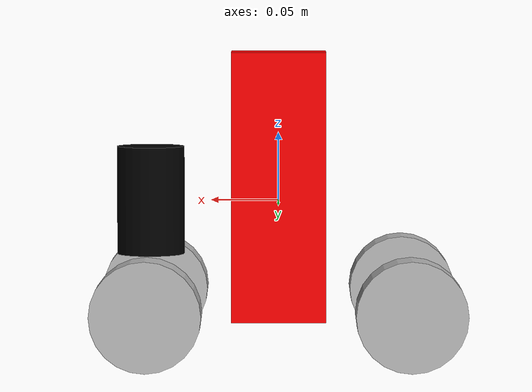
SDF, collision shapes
<?xml version="1.0" ?>
<sdf version="1.5">
  <model name="jsc_mobile_bot">
  <static>false</static>
  <pose>0.0 0.0 0.0 0.0 0.0 0.0</pose>
  <!-- ****************** ROBOT BASE FOOTPRINT ***************************  -->
  <link name="base_footprint"/>

  <!-- ********************** ROBOT BASE *********************************  -->
  <link name="base_link">
  <mass>2.5</mass>
    <collision name="base_collision">
      <pose>0 0 0.01 0 0 0</pose>
      <geometry>
        <box>
          <size>0.070 0.039 0.20</size>
        </box>
      </geometry>
<!-- PRUEBA-->
      <surface>
          <contact>
            <ode/>
          </contact>
          <friction>
            <ode>
              <mu>0.05</mu>
              <mu2>0.05</mu2>
            </ode>
          </friction>
        </surface>
  <!-- HASTA AQUI-->

    </collision>

    <visual name="base_visual">
      <pose>0 0 -0.05 1.5707963267949 0 3.141592654</pose>
      <geometry>
        <mesh>
          <uri>model://jsc_mobile_bot_description/meshes/robot_base.stl</uri>
          <scale>0.5 0.5 0.5</scale>
        </mesh>
      </geometry>
      <material>
        <ambient>1.0 0.0 0.0 1.0</ambient>
        <diffuse>1.0 0.0 0.0 1.0</diffuse>
        <specular>0.0 0.0 0.0 1.0</specular>
        <emissive>0.0 0.0 0.0 1.0</emissive>
      </material>
    </visual>
  </link>

  <!-- *********************** IMU SENSOR SETUP **************************  -->
  <link name="imu_link">
    <gravity>true</gravity>
    <sensor name="bmb_imu" type="imu">
      <always_on>true</always_on>
      <update_rate>100</update_rate>
      <visualize>true</visualize>
      <imu>
        <orientation>
          <x>
            <noise type="gaussian">
              <mean>0.0</mean>
              <stddev>2e-3</stddev>
            </noise>
          </x>
          <y>
            <noise type="gaussian">
              <mean>0.0</mean>
              <stddev>2e-3</stddev>
            </noise>
          </y>
          <z>
            <noise type="gaussian">
              <mean>0.0</mean>
              <stddev>2e-3</stddev>
            </noise>
          </z>
        </orientation>
        <angular_velocity>
          <x>
            <noise type="gaussian">
              <mean>0.0</mean>
              <stddev>2e-4</stddev>
            </noise>
          </x>
          <y>
            <noise type="gaussian">
              <mean>0.0</mean>
              <stddev>2e-4</stddev>
            </noise>
          </y>
          <z>
            <noise type="gaussian">
              <mean>0.0</mean>
              <stddev>2e-4</stddev>
            </noise>
          </z>
        </angular_velocity>
        <linear_acceleration>
          <x>
            <noise type="gaussian">
              <mean>0.0</mean>
              <stddev>1.7e-2</stddev>
            </noise>
          </x>
          <y>
            <noise type="gaussian">
              <mean>0.0</mean>
              <stddev>1.7e-2</stddev>
            </noise>
          </y>
          <z>
            <noise type="gaussian">
              <mean>0.0</mean>
              <stddev>1.7e-2</stddev>
            </noise>
          </z>
        </linear_acceleration>
      </imu>
      <plugin name="jsc_mobile_bot_imu" filename="libgazebo_ros_imu_sensor.so">
        <initial_orientation_as_reference>false</initial_orientation_as_reference>
        <frame_name>imu_link</frame_name>
        <ros>
          <namespace>/imu</namespace>
          <remapping>~/out:=data</remapping>
        </ros>
      </plugin>
    </sensor>
  </link>

  <!-- *********************** GPS SETUP *********************************  -->
  <link name="gps_link">
    <sensor name="bmb_gps" type="gps">
      <always_on>true</always_on>
      <update_rate>10.0</update_rate>
      <gps>
        <position_sensing>
          <horizontal>
            <noise type="gaussian">
              <mean>0.0</mean>
              <stddev>1e-2</stddev>
            </noise>
          </horizontal>
          <vertical>
            <noise type="gaussian">
              <mean>0.0</mean>
              <stddev>1</stddev>
            </noise>
          </vertical>
        </position_sensing>
      </gps>
      <plugin name="jsc_mobile_bot_gps" filename="libgazebo_ros_gps_sensor.so">
        <ros>
          <remapping>~/out:=gps/fix</remapping>
        </ros>
      </plugin>
    </sensor>
  </link>

    <!-- ****************************** LIDAR *****************************    -->

<link name="lidar_link">
  <!-- Physical properties-->
  <inertial>
  <pose>0.095 0 0.02 0 0 0</pose>
    <inertia>
      <ixx>0.001</ixx>
      <ixy>0.000</ixy>
      <ixz>0.000</ixz>
      <iyy>0.001</iyy>
      <iyz>0.000</iyz>
      <izz>0.001</izz>
    </inertia>
    <!--Weight of the LIDAR -->
    <mass>0.114</mass>
  </inertial>

  <collision name="lidar_collision">
  <pose>0.095 0 0 0 0 0</pose>
    <geometry>
      <cylinder>
        <radius>0.025</radius>
        <length>0.08</length>
      </cylinder>
    </geometry>scan
  </collision>

  <visual name="lidar_visual">
  <pose>0.095 0 0.08 0 0 0</pose>
    <geometry>
      <cylinder>
        <radius>0.0508</radius>
        <length>0.12</length>
      </cylinder>
    </geometry>
    <material>
      <ambient>0 0 0 1</ambient>  <!-- Color negro -->
      <diffuse>0 0 0 1</diffuse>  <!-- Color negro -->
    </material>
  </visual>

  <sensor name="lidar" type="ray">
  <pose>0.095 0 0.13 0 0 0</pose>
    <always_on>true</always_on>
    <visualize>true</visualize>
    <update_rate>300</update_rate>
    <ray>
      <scan>
        <horizontal>
          <samples>360</samples>
          <resolution>1.00000</resolution>
          <min_angle>0.000000</min_angle>
          <max_angle>6.280000</max_angle>
        </horizontal>
      </scan>
      <range>
        <min>0.060000</min>
        <max>30</max>
        <resolution>0.015000</resolution>
      </range>
      <noise>
        <type>gaussian</type>
        <mean>0.0</mean>
        <stddev>0.01</stddev>
      </noise>
    </ray>
    <plugin name="scan" filename="libgazebo_ros_ray_sensor.so">
      <ros>
        <remapping>~/out:=scan</remapping>
      </ros>
      <output_type>sensor_msgs/LaserScan</output_type>
      <frame_name>lidar_link</frame_name>
    </plugin>
  </sensor>
</link>

  <!-- *********************** DRIVE WHEELS ******************************  -->

    <link name="drivewhl_fl_link">
      <pose>0.095 0.095 -0.075 1.570796 0 0</pose>
      <collision name="drivewhl_fl_collision">
        <geometry>
          <cylinder>
            <radius>0.04</radius>
            <length>0.035</length>
          </cylinder>
        </geometry>
      </collision>
      <visual name="drivewhl_fl_visual">
        <geometry>
          <cylinder>
            <radius>0.04</radius>
            <length>0.035</length>
          </cylinder>
        </geometry>
      </visual>
    </link>

    <link name="drivewhl_fr_link">
      <pose>0.095 -0.095 -0.075 1.570796 0 0</pose>
      <collision name="drivewhl_fr_collision">
        <geometry>
          <cylinder>
            <radius>0.04</radius>
            <length>0.035</length>
          </cylinder>
        </geometry>
      </collision>
      <visual name="drivewhl_fr_visual">
        <geometry>
          <cylinder>
            <radius>0.04</radius>
            <length>0.035</length>
          </cylinder>
        </geometry>
      </visual>
    </link>

    <link name="drivewhl_bl_link">
      <pose>-0.095 0.095 -0.075 1.570796 0 0</pose>
      <collision name="drivewhl_bl_collision">
        <geometry>
          <cylinder>
            <radius>0.04</radius>
            <length>0.035</length>
          </cylinder>
        </geometry>
      </collision>
      <visual name="drivewhl_bl_visual">
        <geometry>
          <cylinder>
            <radius>0.04</radius>
            <length>0.035</length>
          </cylinder>
        </geometry>
      </visual>
    </link>

    <link name="drivewhl_br_link">
      <pose>-0.095 -0.095 -0.075 1.570796 0 0</pose>
      <collision name="drivewhl_br_collision">
        <geometry>
          <cylinder>
            <radius>0.04</radius>
            <length>0.035</length>
          </cylinder>
        </geometry>
      </collision>
      <visual name="drivewhl_br_visual">
        <geometry>
          <cylinder>
            <radius>0.04</radius>
            <length>0.035</length>
          </cylinder>
        </geometry>
      </visual>
    </link>

  <!-- ************************ JOINTS ***********************************  -->
  <!-- Pose of the joint is the same as the child link frame -->
  <!-- Axis is the axis of rotation relative to the child link frame -->

  <joint name="base_joint" type="fixed">
    <parent>base_footprint</parent>
    <child>base_link</child>
    <pose>0 0 0 0 0 0</pose>
  </joint>

  <joint name="drivewhl_fl_joint" type="revolute">
    <parent>base_link</parent>
    <child>drivewhl_fl_link</child>
    <pose>0 0 0 0 0 0</pose>
    <axis>
      <xyz>0 0 1</xyz>
      <!-- PRUEBA-->
      <dynamics>
        <damping>0.005</damping>
        <friction>0.02</friction>
        <spring_reference>0</spring_reference>
        <spring_stiffness>0</spring_stiffness>
      </dynamics>
    </axis>
  </joint>

  <joint name="drivewhl_fr_joint" type="revolute">
    <parent>base_link</parent>
    <child>drivewhl_fr_link</child>
    <pose>0 0 0 0 0 0</pose>
    <axis>
      <xyz>0 0 1</xyz>
      <!-- PRUEBA-->
      <dynamics>
        <damping>0.005</damping>
        <friction>0.02</friction>
        <spring_reference>0</spring_reference>
        <spring_stiffness>0</spring_stiffness>
      </dynamics>
    </axis>
  </joint>

  <joint name="drivewhl_bl_joint" type="revolute">
    <parent>base_link</parent>
    <child>drivewhl_bl_link</child>
    <pose>0 0 0 0 0 0</pose>
    <axis>
      <xyz>0 0 1</xyz>
      <!-- PRUEBA-->
      <dynamics>
        <damping>0.005</damping>
        <friction>0.02</friction>
        <spring_reference>0</spring_reference>
        <spring_stiffness>0</spring_stiffness>
      </dynamics>
    </axis>
  </joint>

  <joint name="drivewhl_br_joint" type="revolute">
    <parent>base_link</parent>
    <child>drivewhl_br_link</child>
    <pose>0 0 0 0 0 0</pose>
    <axis>
      <xyz>0 0 1</xyz>
      <!-- PRUEBA-->
      <dynamics>
        <damping>0.005</damping>
        <friction>0.02</friction>
        <spring_reference>0</spring_reference>
        <spring_stiffness>0</spring_stiffness>
      </dynamics>
    </axis>
  </joint>

  <joint name="imu_joint" type="fixed">
    <parent>base_link</parent>
    <child>imu_link</child>
    <pose>0 0 0 0 0 0</pose>
  </joint>

  <joint name="gps_joint" type="fixed">
    <parent>base_link</parent>
    <child>gps_link</child>
    <pose>0 0 0 0 0 0</pose>
  </joint>

  <joint name="lidar_joint" type="fixed">
    <parent>base_link</parent>
    <child>lidar_link</child>
    <pose>0 0 0 0 0 0</pose>
  </joint>

<!-- *********************** ROS2_CONTROL ***************************    -->

<ros2_control name="GazeboSystem" type="system">
  <hardware>
    <plugin>gazebo_ros2_control/GazeboSystem</plugin>
  </hardware>
  <joint name="drivewhl_fl_joint">
    <command_interface name="velocity">
      <param name="min">-3.14</param>
      <param name="max">3.14</param>
    </command_interface>
    <state_interface name="position">
      <param name="initial_value">0</param>
    </state_interface>
    <state_interface name="velocity"/>
    <state_interface name="effort"/>
  </joint>

  <joint name="drivewhl_fr_joint">
    <command_interface name="velocity">
      <param name="min">-3.14</param>
      <param name="max">3.14</param>
    </command_interface>
    <state_interface name="position">
      <param name="initial_value">0</param>
    </state_interface>
    <state_interface name="velocity"/>
    <state_interface name="effort"/>
  </joint>
  <joint name="drivewhl_bl_joint">
    <command_interface name="velocity">
      <param name="min">-3.14</param>
      <param name="max">3.14</param>
    </command_interface>
    <state_interface name="position">
      <param name="initial_value">0</param>
    </state_interface>
    <state_interface name="velocity"/>
    <state_interface name="effort"/>
  </joint>

  <joint name="drivewhl_br_joint">
    <command_interface name="velocity">
      <param name="min">-3.14</param>
      <param name="max">3.14</param>
    </command_interface>
    <state_interface name="position">
      <param name="initial_value">0</param>
    </state_interface>
    <state_interface name="velocity"/>
    <state_interface name="effort"/>
  </joint>
</ros2_control>

<plugin name="gazebo_ros2_control" filename="libgazebo_ros2_control.so">
  <parameters>/home/jsc/ros2_ws/install/jsc_mobile_robot/share/jsc_mobile_robot/config/my_controllers.yaml</parameters>
</plugin>

 <!-- *********************** WHEEL ODOMETRY ***************************    -->

  <plugin name="jsc_mobile_bot_diff_drive" filename="libgazebo_ros_diff_drive.so">

    <update_rate>30</update_rate>

    <!-- PRUEBA-->
    <num_wheel_pairs>2</num_wheel_pairs>

    <left_joint>drivewhl_fl_joint</left_joint>
    <left_joint>drivewhl_bl_joint</left_joint>

    <right_joint>drivewhl_fr_joint</right_joint>
    <right_joint>drivewhl_br_joint</right_joint>

    <!-- kinematics -->
    <wheel_separation>0.19</wheel_separation>
    <wheel_diameter>0.08</wheel_diameter>

    <!-- limits -->
    <max_wheel_torque>2</max_wheel_torque>
    <max_wheel_acceleration>1.0</max_wheel_acceleration>

    <!-- Receive velocity commands on this ROS topic -->
    <command_topic>cmd_vel</command_topic>

    <!-- output -->
    <!-- When false, publish no wheel odometry data to a ROS topic -->
    <publish_odom>true</publish_odom>

    <!-- When true, publish coordinate transform from odom to base_footprint -->
    <!-- I usually use the robot_localization package to publish this transform -->
    <publish_odom_tf>false</publish_odom_tf>

    <!-- When true, publish coordinate transform from base_link to the wheels -->
    <!-- The robot_state_publisher package is often used to publish this transform -->
    <publish_wheel_tf>false</publish_wheel_tf>

    <odometry_topic>odom</odometry_topic>
    <odometry_frame>odom</odometry_frame>

    <!-- PRUEBA antes era  base_footprint ******************************************-->
    <robot_base_frame>base_footprint</robot_base_frame>

    <!-- Odometry source, 0 for ENCODER, 1 for WORLD, defaults to WORLD -->
    <odometry_source>0</odometry_source>

    <!-- Change the ROS topic we will publish the odometry data to -->
    <ros>
      <remapping>odom:=wheel/odometry</remapping>
    </ros>

  </plugin>

 <!-- *********************** JOINT STATE PUBLISHER *********************   -->

  <plugin name="jsc_mobile_bot_joint_state" filename="libgazebo_ros_joint_state_publisher.so">
    <ros>
      <remapping>~/out:=joint_states</remapping>
    </ros>
    <update_rate>30</update_rate>

    <joint_name>drivewhl_fl_joint</joint_name>
    <joint_name>drivewhl_fr_joint</joint_name>

    <joint_name>drivewhl_bl_joint</joint_name>
    <joint_name>drivewhl_br_joint</joint_name>

  </plugin>

  </model>
</sdf>
